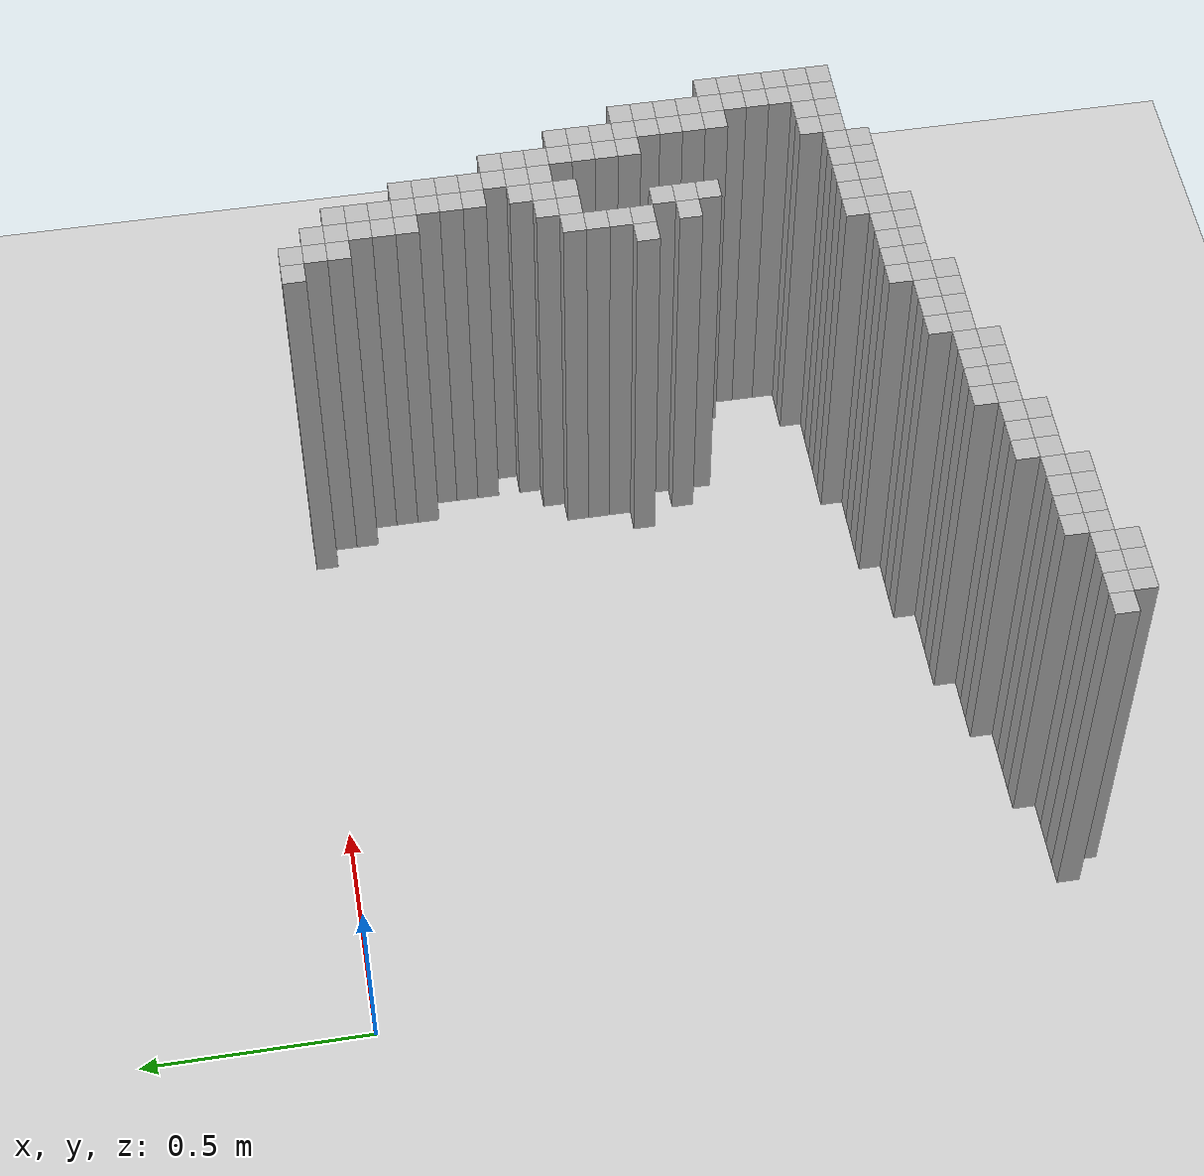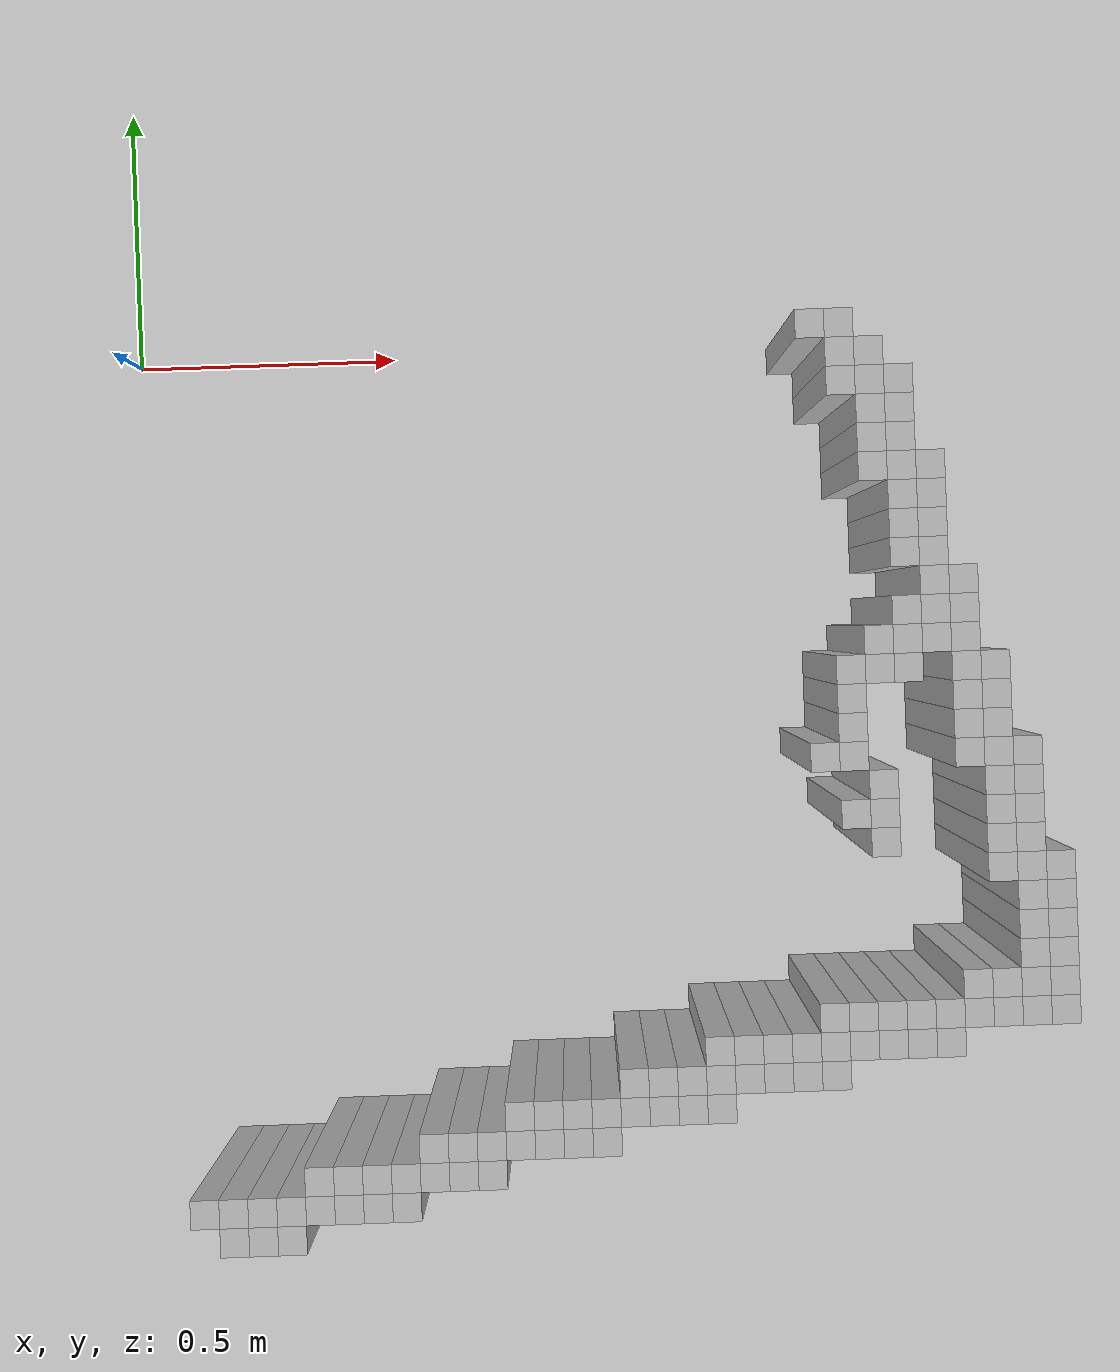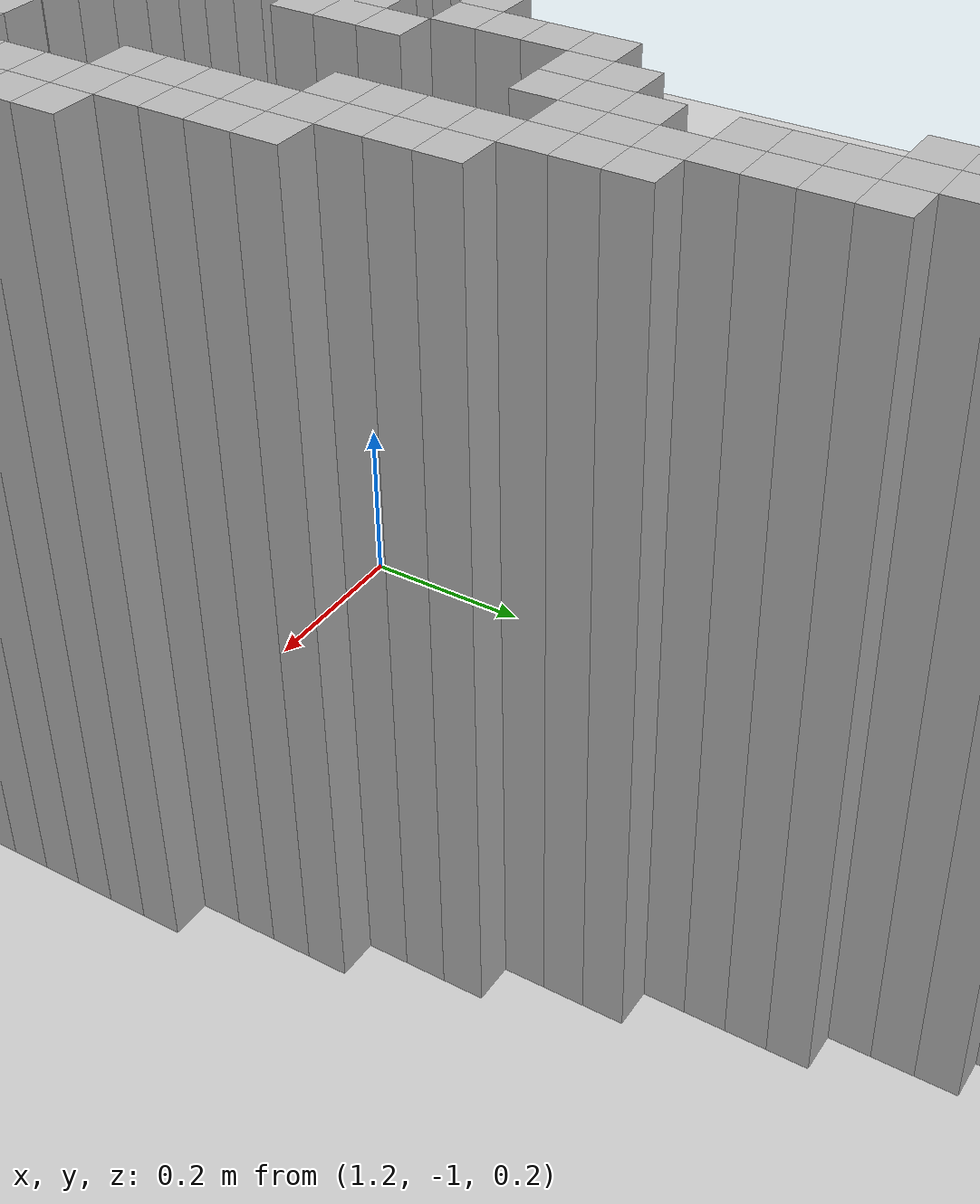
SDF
<sdf version="1.6">
 <world name="default">
  <include><uri>model://ground_plane</uri></include>
  <include><uri>model://sun</uri></include>
  <model name="wall_387">
   <static>true</static>
   <pose>1.2600000000000007 -0.03000000000000025 0.5 0 0 0</pose>
   <link name="link">
    <collision name="collision"><geometry><box><size>0.05 0.05 1</size></box></geometry></collision>
    <visual name="visual"><geometry><box><size>0.05 0.05 1</size></box></geometry></visual>
   </link>
  </model>
  <model name="wall_388">
   <static>true</static>
   <pose>1.3100000000000005 -0.03000000000000025 0.5 0 0 0</pose>
   <link name="link">
    <collision name="collision"><geometry><box><size>0.05 0.05 1</size></box></geometry></collision>
    <visual name="visual"><geometry><box><size>0.05 0.05 1</size></box></geometry></visual>
   </link>
  </model>
  <model name="wall_398">
   <static>true</static>
   <pose>1.3100000000000005 -0.08000000000000007 0.5 0 0 0</pose>
   <link name="link">
    <collision name="collision"><geometry><box><size>0.05 0.05 1</size></box></geometry></collision>
    <visual name="visual"><geometry><box><size>0.05 0.05 1</size></box></geometry></visual>
   </link>
  </model>
  <model name="wall_399">
   <static>true</static>
   <pose>1.3600000000000003 -0.08000000000000007 0.5 0 0 0</pose>
   <link name="link">
    <collision name="collision"><geometry><box><size>0.05 0.05 1</size></box></geometry></collision>
    <visual name="visual"><geometry><box><size>0.05 0.05 1</size></box></geometry></visual>
   </link>
  </model>
  <model name="wall_412">
   <static>true</static>
   <pose>1.3100000000000005 -0.1299999999999999 0.5 0 0 0</pose>
   <link name="link">
    <collision name="collision"><geometry><box><size>0.05 0.05 1</size></box></geometry></collision>
    <visual name="visual"><geometry><box><size>0.05 0.05 1</size></box></geometry></visual>
   </link>
  </model>
  <model name="wall_413">
   <static>true</static>
   <pose>1.3600000000000003 -0.1299999999999999 0.5 0 0 0</pose>
   <link name="link">
    <collision name="collision"><geometry><box><size>0.05 0.05 1</size></box></geometry></collision>
    <visual name="visual"><geometry><box><size>0.05 0.05 1</size></box></geometry></visual>
   </link>
  </model>
  <model name="wall_414">
   <static>true</static>
   <pose>1.4100000000000001 -0.1299999999999999 0.5 0 0 0</pose>
   <link name="link">
    <collision name="collision"><geometry><box><size>0.05 0.05 1</size></box></geometry></collision>
    <visual name="visual"><geometry><box><size>0.05 0.05 1</size></box></geometry></visual>
   </link>
  </model>
  <model name="wall_423">
   <static>true</static>
   <pose>1.3600000000000003 -0.18000000000000016 0.5 0 0 0</pose>
   <link name="link">
    <collision name="collision"><geometry><box><size>0.05 0.05 1</size></box></geometry></collision>
    <visual name="visual"><geometry><box><size>0.05 0.05 1</size></box></geometry></visual>
   </link>
  </model>
  <model name="wall_424">
   <static>true</static>
   <pose>1.4100000000000001 -0.18000000000000016 0.5 0 0 0</pose>
   <link name="link">
    <collision name="collision"><geometry><box><size>0.05 0.05 1</size></box></geometry></collision>
    <visual name="visual"><geometry><box><size>0.05 0.05 1</size></box></geometry></visual>
   </link>
  </model>
  <model name="wall_431">
   <static>true</static>
   <pose>1.3600000000000003 -0.22999999999999998 0.5 0 0 0</pose>
   <link name="link">
    <collision name="collision"><geometry><box><size>0.05 0.05 1</size></box></geometry></collision>
    <visual name="visual"><geometry><box><size>0.05 0.05 1</size></box></geometry></visual>
   </link>
  </model>
  <model name="wall_432">
   <static>true</static>
   <pose>1.4100000000000001 -0.22999999999999998 0.5 0 0 0</pose>
   <link name="link">
    <collision name="collision"><geometry><box><size>0.05 0.05 1</size></box></geometry></collision>
    <visual name="visual"><geometry><box><size>0.05 0.05 1</size></box></geometry></visual>
   </link>
  </model>
  <model name="wall_435">
   <static>true</static>
   <pose>1.3600000000000003 -0.28 0.5 0 0 0</pose>
   <link name="link">
    <collision name="collision"><geometry><box><size>0.05 0.05 1</size></box></geometry></collision>
    <visual name="visual"><geometry><box><size>0.05 0.05 1</size></box></geometry></visual>
   </link>
  </model>
  <model name="wall_436">
   <static>true</static>
   <pose>1.4100000000000001 -0.28 0.5 0 0 0</pose>
   <link name="link">
    <collision name="collision"><geometry><box><size>0.05 0.05 1</size></box></geometry></collision>
    <visual name="visual"><geometry><box><size>0.05 0.05 1</size></box></geometry></visual>
   </link>
  </model>
  <model name="wall_437">
   <static>true</static>
   <pose>1.46 -0.28 0.5 0 0 0</pose>
   <link name="link">
    <collision name="collision"><geometry><box><size>0.05 0.05 1</size></box></geometry></collision>
    <visual name="visual"><geometry><box><size>0.05 0.05 1</size></box></geometry></visual>
   </link>
  </model>
  <model name="wall_444">
   <static>true</static>
   <pose>1.4100000000000001 -0.33000000000000007 0.5 0 0 0</pose>
   <link name="link">
    <collision name="collision"><geometry><box><size>0.05 0.05 1</size></box></geometry></collision>
    <visual name="visual"><geometry><box><size>0.05 0.05 1</size></box></geometry></visual>
   </link>
  </model>
  <model name="wall_445">
   <static>true</static>
   <pose>1.46 -0.33000000000000007 0.5 0 0 0</pose>
   <link name="link">
    <collision name="collision"><geometry><box><size>0.05 0.05 1</size></box></geometry></collision>
    <visual name="visual"><geometry><box><size>0.05 0.05 1</size></box></geometry></visual>
   </link>
  </model>
  <model name="wall_453">
   <static>true</static>
   <pose>1.4100000000000001 -0.3800000000000001 0.5 0 0 0</pose>
   <link name="link">
    <collision name="collision"><geometry><box><size>0.05 0.05 1</size></box></geometry></collision>
    <visual name="visual"><geometry><box><size>0.05 0.05 1</size></box></geometry></visual>
   </link>
  </model>
  <model name="wall_454">
   <static>true</static>
   <pose>1.46 -0.3800000000000001 0.5 0 0 0</pose>
   <link name="link">
    <collision name="collision"><geometry><box><size>0.05 0.05 1</size></box></geometry></collision>
    <visual name="visual"><geometry><box><size>0.05 0.05 1</size></box></geometry></visual>
   </link>
  </model>
  <model name="wall_457">
   <static>true</static>
   <pose>1.4100000000000001 -0.43000000000000016 0.5 0 0 0</pose>
   <link name="link">
    <collision name="collision"><geometry><box><size>0.05 0.05 1</size></box></geometry></collision>
    <visual name="visual"><geometry><box><size>0.05 0.05 1</size></box></geometry></visual>
   </link>
  </model>
  <model name="wall_458">
   <static>true</static>
   <pose>1.46 -0.43000000000000016 0.5 0 0 0</pose>
   <link name="link">
    <collision name="collision"><geometry><box><size>0.05 0.05 1</size></box></geometry></collision>
    <visual name="visual"><geometry><box><size>0.05 0.05 1</size></box></geometry></visual>
   </link>
  </model>
  <model name="wall_459">
   <static>true</static>
   <pose>1.46 -0.48 0.5 0 0 0</pose>
   <link name="link">
    <collision name="collision"><geometry><box><size>0.05 0.05 1</size></box></geometry></collision>
    <visual name="visual"><geometry><box><size>0.05 0.05 1</size></box></geometry></visual>
   </link>
  </model>
  <model name="wall_460">
   <static>true</static>
   <pose>1.5100000000000007 -0.48 0.5 0 0 0</pose>
   <link name="link">
    <collision name="collision"><geometry><box><size>0.05 0.05 1</size></box></geometry></collision>
    <visual name="visual"><geometry><box><size>0.05 0.05 1</size></box></geometry></visual>
   </link>
  </model>
  <model name="wall_462">
   <static>true</static>
   <pose>1.4100000000000001 -0.53 0.5 0 0 0</pose>
   <link name="link">
    <collision name="collision"><geometry><box><size>0.05 0.05 1</size></box></geometry></collision>
    <visual name="visual"><geometry><box><size>0.05 0.05 1</size></box></geometry></visual>
   </link>
  </model>
  <model name="wall_463">
   <static>true</static>
   <pose>1.46 -0.53 0.5 0 0 0</pose>
   <link name="link">
    <collision name="collision"><geometry><box><size>0.05 0.05 1</size></box></geometry></collision>
    <visual name="visual"><geometry><box><size>0.05 0.05 1</size></box></geometry></visual>
   </link>
  </model>
  <model name="wall_464">
   <static>true</static>
   <pose>1.5100000000000007 -0.53 0.5 0 0 0</pose>
   <link name="link">
    <collision name="collision"><geometry><box><size>0.05 0.05 1</size></box></geometry></collision>
    <visual name="visual"><geometry><box><size>0.05 0.05 1</size></box></geometry></visual>
   </link>
  </model>
  <model name="wall_466">
   <static>true</static>
   <pose>1.3600000000000003 -0.5800000000000001 0.5 0 0 0</pose>
   <link name="link">
    <collision name="collision"><geometry><box><size>0.05 0.05 1</size></box></geometry></collision>
    <visual name="visual"><geometry><box><size>0.05 0.05 1</size></box></geometry></visual>
   </link>
  </model>
  <model name="wall_467">
   <static>true</static>
   <pose>1.4100000000000001 -0.5800000000000001 0.5 0 0 0</pose>
   <link name="link">
    <collision name="collision"><geometry><box><size>0.05 0.05 1</size></box></geometry></collision>
    <visual name="visual"><geometry><box><size>0.05 0.05 1</size></box></geometry></visual>
   </link>
  </model>
  <model name="wall_468">
   <static>true</static>
   <pose>1.46 -0.5800000000000001 0.5 0 0 0</pose>
   <link name="link">
    <collision name="collision"><geometry><box><size>0.05 0.05 1</size></box></geometry></collision>
    <visual name="visual"><geometry><box><size>0.05 0.05 1</size></box></geometry></visual>
   </link>
  </model>
  <model name="wall_469">
   <static>true</static>
   <pose>1.5100000000000007 -0.5800000000000001 0.5 0 0 0</pose>
   <link name="link">
    <collision name="collision"><geometry><box><size>0.05 0.05 1</size></box></geometry></collision>
    <visual name="visual"><geometry><box><size>0.05 0.05 1</size></box></geometry></visual>
   </link>
  </model>
  <model name="wall_472">
   <static>true</static>
   <pose>1.3100000000000005 -0.6300000000000001 0.5 0 0 0</pose>
   <link name="link">
    <collision name="collision"><geometry><box><size>0.05 0.05 1</size></box></geometry></collision>
    <visual name="visual"><geometry><box><size>0.05 0.05 1</size></box></geometry></visual>
   </link>
  </model>
  <model name="wall_473">
   <static>true</static>
   <pose>1.3600000000000003 -0.6300000000000001 0.5 0 0 0</pose>
   <link name="link">
    <collision name="collision"><geometry><box><size>0.05 0.05 1</size></box></geometry></collision>
    <visual name="visual"><geometry><box><size>0.05 0.05 1</size></box></geometry></visual>
   </link>
  </model>
  <model name="wall_474">
   <static>true</static>
   <pose>1.4100000000000001 -0.6300000000000001 0.5 0 0 0</pose>
   <link name="link">
    <collision name="collision"><geometry><box><size>0.05 0.05 1</size></box></geometry></collision>
    <visual name="visual"><geometry><box><size>0.05 0.05 1</size></box></geometry></visual>
   </link>
  </model>
  <model name="wall_475">
   <static>true</static>
   <pose>1.5100000000000007 -0.6300000000000001 0.5 0 0 0</pose>
   <link name="link">
    <collision name="collision"><geometry><box><size>0.05 0.05 1</size></box></geometry></collision>
    <visual name="visual"><geometry><box><size>0.05 0.05 1</size></box></geometry></visual>
   </link>
  </model>
  <model name="wall_476">
   <static>true</static>
   <pose>1.5600000000000005 -0.6300000000000001 0.5 0 0 0</pose>
   <link name="link">
    <collision name="collision"><geometry><box><size>0.05 0.05 1</size></box></geometry></collision>
    <visual name="visual"><geometry><box><size>0.05 0.05 1</size></box></geometry></visual>
   </link>
  </model>
  <model name="wall_477">
   <static>true</static>
   <pose>1.3100000000000005 -0.6800000000000002 0.5 0 0 0</pose>
   <link name="link">
    <collision name="collision"><geometry><box><size>0.05 0.05 1</size></box></geometry></collision>
    <visual name="visual"><geometry><box><size>0.05 0.05 1</size></box></geometry></visual>
   </link>
  </model>
  <model name="wall_478">
   <static>true</static>
   <pose>1.5100000000000007 -0.6800000000000002 0.5 0 0 0</pose>
   <link name="link">
    <collision name="collision"><geometry><box><size>0.05 0.05 1</size></box></geometry></collision>
    <visual name="visual"><geometry><box><size>0.05 0.05 1</size></box></geometry></visual>
   </link>
  </model>
  <model name="wall_479">
   <static>true</static>
   <pose>1.5600000000000005 -0.6800000000000002 0.5 0 0 0</pose>
   <link name="link">
    <collision name="collision"><geometry><box><size>0.05 0.05 1</size></box></geometry></collision>
    <visual name="visual"><geometry><box><size>0.05 0.05 1</size></box></geometry></visual>
   </link>
  </model>
  <model name="wall_481">
   <static>true</static>
   <pose>1.3100000000000005 -0.73 0.5 0 0 0</pose>
   <link name="link">
    <collision name="collision"><geometry><box><size>0.05 0.05 1</size></box></geometry></collision>
    <visual name="visual"><geometry><box><size>0.05 0.05 1</size></box></geometry></visual>
   </link>
  </model>
  <model name="wall_482">
   <static>true</static>
   <pose>1.5100000000000007 -0.73 0.5 0 0 0</pose>
   <link name="link">
    <collision name="collision"><geometry><box><size>0.05 0.05 1</size></box></geometry></collision>
    <visual name="visual"><geometry><box><size>0.05 0.05 1</size></box></geometry></visual>
   </link>
  </model>
  <model name="wall_483">
   <static>true</static>
   <pose>1.5600000000000005 -0.73 0.5 0 0 0</pose>
   <link name="link">
    <collision name="collision"><geometry><box><size>0.05 0.05 1</size></box></geometry></collision>
    <visual name="visual"><geometry><box><size>0.05 0.05 1</size></box></geometry></visual>
   </link>
  </model>
  <model name="wall_486">
   <static>true</static>
   <pose>1.2600000000000007 -0.78 0.5 0 0 0</pose>
   <link name="link">
    <collision name="collision"><geometry><box><size>0.05 0.05 1</size></box></geometry></collision>
    <visual name="visual"><geometry><box><size>0.05 0.05 1</size></box></geometry></visual>
   </link>
  </model>
  <model name="wall_487">
   <static>true</static>
   <pose>1.3100000000000005 -0.78 0.5 0 0 0</pose>
   <link name="link">
    <collision name="collision"><geometry><box><size>0.05 0.05 1</size></box></geometry></collision>
    <visual name="visual"><geometry><box><size>0.05 0.05 1</size></box></geometry></visual>
   </link>
  </model>
  <model name="wall_488">
   <static>true</static>
   <pose>1.5100000000000007 -0.78 0.5 0 0 0</pose>
   <link name="link">
    <collision name="collision"><geometry><box><size>0.05 0.05 1</size></box></geometry></collision>
    <visual name="visual"><geometry><box><size>0.05 0.05 1</size></box></geometry></visual>
   </link>
  </model>
  <model name="wall_489">
   <static>true</static>
   <pose>1.5600000000000005 -0.78 0.5 0 0 0</pose>
   <link name="link">
    <collision name="collision"><geometry><box><size>0.05 0.05 1</size></box></geometry></collision>
    <visual name="visual"><geometry><box><size>0.05 0.05 1</size></box></geometry></visual>
   </link>
  </model>
  <model name="wall_490">
   <static>true</static>
   <pose>1.6100000000000003 -0.78 0.5 0 0 0</pose>
   <link name="link">
    <collision name="collision"><geometry><box><size>0.05 0.05 1</size></box></geometry></collision>
    <visual name="visual"><geometry><box><size>0.05 0.05 1</size></box></geometry></visual>
   </link>
  </model>
  <model name="wall_493">
   <static>true</static>
   <pose>1.3600000000000003 -0.8300000000000001 0.5 0 0 0</pose>
   <link name="link">
    <collision name="collision"><geometry><box><size>0.05 0.05 1</size></box></geometry></collision>
    <visual name="visual"><geometry><box><size>0.05 0.05 1</size></box></geometry></visual>
   </link>
  </model>
  <model name="wall_494">
   <static>true</static>
   <pose>1.5600000000000005 -0.8300000000000001 0.5 0 0 0</pose>
   <link name="link">
    <collision name="collision"><geometry><box><size>0.05 0.05 1</size></box></geometry></collision>
    <visual name="visual"><geometry><box><size>0.05 0.05 1</size></box></geometry></visual>
   </link>
  </model>
  <model name="wall_495">
   <static>true</static>
   <pose>1.6100000000000003 -0.8300000000000001 0.5 0 0 0</pose>
   <link name="link">
    <collision name="collision"><geometry><box><size>0.05 0.05 1</size></box></geometry></collision>
    <visual name="visual"><geometry><box><size>0.05 0.05 1</size></box></geometry></visual>
   </link>
  </model>
  <model name="wall_498">
   <static>true</static>
   <pose>1.3100000000000005 -0.8800000000000001 0.5 0 0 0</pose>
   <link name="link">
    <collision name="collision"><geometry><box><size>0.05 0.05 1</size></box></geometry></collision>
    <visual name="visual"><geometry><box><size>0.05 0.05 1</size></box></geometry></visual>
   </link>
  </model>
  <model name="wall_499">
   <static>true</static>
   <pose>1.3600000000000003 -0.8800000000000001 0.5 0 0 0</pose>
   <link name="link">
    <collision name="collision"><geometry><box><size>0.05 0.05 1</size></box></geometry></collision>
    <visual name="visual"><geometry><box><size>0.05 0.05 1</size></box></geometry></visual>
   </link>
  </model>
  <model name="wall_500">
   <static>true</static>
   <pose>1.5600000000000005 -0.8800000000000001 0.5 0 0 0</pose>
   <link name="link">
    <collision name="collision"><geometry><box><size>0.05 0.05 1</size></box></geometry></collision>
    <visual name="visual"><geometry><box><size>0.05 0.05 1</size></box></geometry></visual>
   </link>
  </model>
  <model name="wall_501">
   <static>true</static>
   <pose>1.6100000000000003 -0.8800000000000001 0.5 0 0 0</pose>
   <link name="link">
    <collision name="collision"><geometry><box><size>0.05 0.05 1</size></box></geometry></collision>
    <visual name="visual"><geometry><box><size>0.05 0.05 1</size></box></geometry></visual>
   </link>
  </model>
  <model name="wall_505">
   <static>true</static>
   <pose>1.3600000000000003 -0.9300000000000002 0.5 0 0 0</pose>
   <link name="link">
    <collision name="collision"><geometry><box><size>0.05 0.05 1</size></box></geometry></collision>
    <visual name="visual"><geometry><box><size>0.05 0.05 1</size></box></geometry></visual>
   </link>
  </model>
  <model name="wall_506">
   <static>true</static>
   <pose>1.5600000000000005 -0.9300000000000002 0.5 0 0 0</pose>
   <link name="link">
    <collision name="collision"><geometry><box><size>0.05 0.05 1</size></box></geometry></collision>
    <visual name="visual"><geometry><box><size>0.05 0.05 1</size></box></geometry></visual>
   </link>
  </model>
  <model name="wall_507">
   <static>true</static>
   <pose>1.6100000000000003 -0.9300000000000002 0.5 0 0 0</pose>
   <link name="link">
    <collision name="collision"><geometry><box><size>0.05 0.05 1</size></box></geometry></collision>
    <visual name="visual"><geometry><box><size>0.05 0.05 1</size></box></geometry></visual>
   </link>
  </model>
  <model name="wall_511">
   <static>true</static>
   <pose>1.5600000000000005 -0.98 0.5 0 0 0</pose>
   <link name="link">
    <collision name="collision"><geometry><box><size>0.05 0.05 1</size></box></geometry></collision>
    <visual name="visual"><geometry><box><size>0.05 0.05 1</size></box></geometry></visual>
   </link>
  </model>
  <model name="wall_512">
   <static>true</static>
   <pose>1.6100000000000003 -0.98 0.5 0 0 0</pose>
   <link name="link">
    <collision name="collision"><geometry><box><size>0.05 0.05 1</size></box></geometry></collision>
    <visual name="visual"><geometry><box><size>0.05 0.05 1</size></box></geometry></visual>
   </link>
  </model>
  <model name="wall_513">
   <static>true</static>
   <pose>1.6600000000000001 -0.98 0.5 0 0 0</pose>
   <link name="link">
    <collision name="collision"><geometry><box><size>0.05 0.05 1</size></box></geometry></collision>
    <visual name="visual"><geometry><box><size>0.05 0.05 1</size></box></geometry></visual>
   </link>
  </model>
  <model name="wall_516">
   <static>true</static>
   <pose>1.6100000000000003 -1.03 0.5 0 0 0</pose>
   <link name="link">
    <collision name="collision"><geometry><box><size>0.05 0.05 1</size></box></geometry></collision>
    <visual name="visual"><geometry><box><size>0.05 0.05 1</size></box></geometry></visual>
   </link>
  </model>
  <model name="wall_517">
   <static>true</static>
   <pose>1.6600000000000001 -1.03 0.5 0 0 0</pose>
   <link name="link">
    <collision name="collision"><geometry><box><size>0.05 0.05 1</size></box></geometry></collision>
    <visual name="visual"><geometry><box><size>0.05 0.05 1</size></box></geometry></visual>
   </link>
  </model>
  <model name="wall_520">
   <static>true</static>
   <pose>1.6100000000000003 -1.08 0.5 0 0 0</pose>
   <link name="link">
    <collision name="collision"><geometry><box><size>0.05 0.05 1</size></box></geometry></collision>
    <visual name="visual"><geometry><box><size>0.05 0.05 1</size></box></geometry></visual>
   </link>
  </model>
  <model name="wall_521">
   <static>true</static>
   <pose>1.6600000000000001 -1.08 0.5 0 0 0</pose>
   <link name="link">
    <collision name="collision"><geometry><box><size>0.05 0.05 1</size></box></geometry></collision>
    <visual name="visual"><geometry><box><size>0.05 0.05 1</size></box></geometry></visual>
   </link>
  </model>
  <model name="wall_524">
   <static>true</static>
   <pose>1.6100000000000003 -1.1300000000000001 0.5 0 0 0</pose>
   <link name="link">
    <collision name="collision"><geometry><box><size>0.05 0.05 1</size></box></geometry></collision>
    <visual name="visual"><geometry><box><size>0.05 0.05 1</size></box></geometry></visual>
   </link>
  </model>
  <model name="wall_525">
   <static>true</static>
   <pose>1.6600000000000001 -1.1300000000000001 0.5 0 0 0</pose>
   <link name="link">
    <collision name="collision"><geometry><box><size>0.05 0.05 1</size></box></geometry></collision>
    <visual name="visual"><geometry><box><size>0.05 0.05 1</size></box></geometry></visual>
   </link>
  </model>
  <model name="wall_529">
   <static>true</static>
   <pose>1.5100000000000007 -1.1800000000000002 0.5 0 0 0</pose>
   <link name="link">
    <collision name="collision"><geometry><box><size>0.05 0.05 1</size></box></geometry></collision>
    <visual name="visual"><geometry><box><size>0.05 0.05 1</size></box></geometry></visual>
   </link>
  </model>
  <model name="wall_530">
   <static>true</static>
   <pose>1.5600000000000005 -1.1800000000000002 0.5 0 0 0</pose>
   <link name="link">
    <collision name="collision"><geometry><box><size>0.05 0.05 1</size></box></geometry></collision>
    <visual name="visual"><geometry><box><size>0.05 0.05 1</size></box></geometry></visual>
   </link>
  </model>
  <model name="wall_531">
   <static>true</static>
   <pose>1.6100000000000003 -1.1800000000000002 0.5 0 0 0</pose>
   <link name="link">
    <collision name="collision"><geometry><box><size>0.05 0.05 1</size></box></geometry></collision>
    <visual name="visual"><geometry><box><size>0.05 0.05 1</size></box></geometry></visual>
   </link>
  </model>
  <model name="wall_532">
   <static>true</static>
   <pose>1.6600000000000001 -1.1800000000000002 0.5 0 0 0</pose>
   <link name="link">
    <collision name="collision"><geometry><box><size>0.05 0.05 1</size></box></geometry></collision>
    <visual name="visual"><geometry><box><size>0.05 0.05 1</size></box></geometry></visual>
   </link>
  </model>
  <model name="wall_538">
   <static>true</static>
   <pose>1.2600000000000007 -1.23 0.5 0 0 0</pose>
   <link name="link">
    <collision name="collision"><geometry><box><size>0.05 0.05 1</size></box></geometry></collision>
    <visual name="visual"><geometry><box><size>0.05 0.05 1</size></box></geometry></visual>
   </link>
  </model>
  <model name="wall_539">
   <static>true</static>
   <pose>1.3100000000000005 -1.23 0.5 0 0 0</pose>
   <link name="link">
    <collision name="collision"><geometry><box><size>0.05 0.05 1</size></box></geometry></collision>
    <visual name="visual"><geometry><box><size>0.05 0.05 1</size></box></geometry></visual>
   </link>
  </model>
  <model name="wall_540">
   <static>true</static>
   <pose>1.3600000000000003 -1.23 0.5 0 0 0</pose>
   <link name="link">
    <collision name="collision"><geometry><box><size>0.05 0.05 1</size></box></geometry></collision>
    <visual name="visual"><geometry><box><size>0.05 0.05 1</size></box></geometry></visual>
   </link>
  </model>
  <model name="wall_541">
   <static>true</static>
   <pose>1.4100000000000001 -1.23 0.5 0 0 0</pose>
   <link name="link">
    <collision name="collision"><geometry><box><size>0.05 0.05 1</size></box></geometry></collision>
    <visual name="visual"><geometry><box><size>0.05 0.05 1</size></box></geometry></visual>
   </link>
  </model>
  <model name="wall_542">
   <static>true</static>
   <pose>1.46 -1.23 0.5 0 0 0</pose>
   <link name="link">
    <collision name="collision"><geometry><box><size>0.05 0.05 1</size></box></geometry></collision>
    <visual name="visual"><geometry><box><size>0.05 0.05 1</size></box></geometry></visual>
   </link>
  </model>
  <model name="wall_543">
   <static>true</static>
   <pose>1.5100000000000007 -1.23 0.5 0 0 0</pose>
   <link name="link">
    <collision name="collision"><geometry><box><size>0.05 0.05 1</size></box></geometry></collision>
    <visual name="visual"><geometry><box><size>0.05 0.05 1</size></box></geometry></visual>
   </link>
  </model>
  <model name="wall_544">
   <static>true</static>
   <pose>1.5600000000000005 -1.23 0.5 0 0 0</pose>
   <link name="link">
    <collision name="collision"><geometry><box><size>0.05 0.05 1</size></box></geometry></collision>
    <visual name="visual"><geometry><box><size>0.05 0.05 1</size></box></geometry></visual>
   </link>
  </model>
  <model name="wall_545">
   <static>true</static>
   <pose>1.6100000000000003 -1.23 0.5 0 0 0</pose>
   <link name="link">
    <collision name="collision"><geometry><box><size>0.05 0.05 1</size></box></geometry></collision>
    <visual name="visual"><geometry><box><size>0.05 0.05 1</size></box></geometry></visual>
   </link>
  </model>
  <model name="wall_546">
   <static>true</static>
   <pose>1.6600000000000001 -1.23 0.5 0 0 0</pose>
   <link name="link">
    <collision name="collision"><geometry><box><size>0.05 0.05 1</size></box></geometry></collision>
    <visual name="visual"><geometry><box><size>0.05 0.05 1</size></box></geometry></visual>
   </link>
  </model>
  <model name="wall_552">
   <static>true</static>
   <pose>1.0600000000000005 -1.2800000000000002 0.5 0 0 0</pose>
   <link name="link">
    <collision name="collision"><geometry><box><size>0.05 0.05 1</size></box></geometry></collision>
    <visual name="visual"><geometry><box><size>0.05 0.05 1</size></box></geometry></visual>
   </link>
  </model>
  <model name="wall_553">
   <static>true</static>
   <pose>1.1100000000000003 -1.2800000000000002 0.5 0 0 0</pose>
   <link name="link">
    <collision name="collision"><geometry><box><size>0.05 0.05 1</size></box></geometry></collision>
    <visual name="visual"><geometry><box><size>0.05 0.05 1</size></box></geometry></visual>
   </link>
  </model>
  <model name="wall_554">
   <static>true</static>
   <pose>1.1600000000000001 -1.2800000000000002 0.5 0 0 0</pose>
   <link name="link">
    <collision name="collision"><geometry><box><size>0.05 0.05 1</size></box></geometry></collision>
    <visual name="visual"><geometry><box><size>0.05 0.05 1</size></box></geometry></visual>
   </link>
  </model>
  <model name="wall_555">
   <static>true</static>
   <pose>1.21 -1.2800000000000002 0.5 0 0 0</pose>
   <link name="link">
    <collision name="collision"><geometry><box><size>0.05 0.05 1</size></box></geometry></collision>
    <visual name="visual"><geometry><box><size>0.05 0.05 1</size></box></geometry></visual>
   </link>
  </model>
  <model name="wall_556">
   <static>true</static>
   <pose>1.2600000000000007 -1.2800000000000002 0.5 0 0 0</pose>
   <link name="link">
    <collision name="collision"><geometry><box><size>0.05 0.05 1</size></box></geometry></collision>
    <visual name="visual"><geometry><box><size>0.05 0.05 1</size></box></geometry></visual>
   </link>
  </model>
  <model name="wall_557">
   <static>true</static>
   <pose>1.3100000000000005 -1.2800000000000002 0.5 0 0 0</pose>
   <link name="link">
    <collision name="collision"><geometry><box><size>0.05 0.05 1</size></box></geometry></collision>
    <visual name="visual"><geometry><box><size>0.05 0.05 1</size></box></geometry></visual>
   </link>
  </model>
  <model name="wall_558">
   <static>true</static>
   <pose>1.3600000000000003 -1.2800000000000002 0.5 0 0 0</pose>
   <link name="link">
    <collision name="collision"><geometry><box><size>0.05 0.05 1</size></box></geometry></collision>
    <visual name="visual"><geometry><box><size>0.05 0.05 1</size></box></geometry></visual>
   </link>
  </model>
  <model name="wall_559">
   <static>true</static>
   <pose>1.4100000000000001 -1.2800000000000002 0.5 0 0 0</pose>
   <link name="link">
    <collision name="collision"><geometry><box><size>0.05 0.05 1</size></box></geometry></collision>
    <visual name="visual"><geometry><box><size>0.05 0.05 1</size></box></geometry></visual>
   </link>
  </model>
  <model name="wall_560">
   <static>true</static>
   <pose>1.46 -1.2800000000000002 0.5 0 0 0</pose>
   <link name="link">
    <collision name="collision"><geometry><box><size>0.05 0.05 1</size></box></geometry></collision>
    <visual name="visual"><geometry><box><size>0.05 0.05 1</size></box></geometry></visual>
   </link>
  </model>
  <model name="wall_566">
   <static>true</static>
   <pose>0.9100000000000001 -1.33 0.5 0 0 0</pose>
   <link name="link">
    <collision name="collision"><geometry><box><size>0.05 0.05 1</size></box></geometry></collision>
    <visual name="visual"><geometry><box><size>0.05 0.05 1</size></box></geometry></visual>
   </link>
  </model>
  <model name="wall_567">
   <static>true</static>
   <pose>0.9600000000000004 -1.33 0.5 0 0 0</pose>
   <link name="link">
    <collision name="collision"><geometry><box><size>0.05 0.05 1</size></box></geometry></collision>
    <visual name="visual"><geometry><box><size>0.05 0.05 1</size></box></geometry></visual>
   </link>
  </model>
  <model name="wall_568">
   <static>true</static>
   <pose>1.0100000000000002 -1.33 0.5 0 0 0</pose>
   <link name="link">
    <collision name="collision"><geometry><box><size>0.05 0.05 1</size></box></geometry></collision>
    <visual name="visual"><geometry><box><size>0.05 0.05 1</size></box></geometry></visual>
   </link>
  </model>
  <model name="wall_569">
   <static>true</static>
   <pose>1.0600000000000005 -1.33 0.5 0 0 0</pose>
   <link name="link">
    <collision name="collision"><geometry><box><size>0.05 0.05 1</size></box></geometry></collision>
    <visual name="visual"><geometry><box><size>0.05 0.05 1</size></box></geometry></visual>
   </link>
  </model>
  <model name="wall_570">
   <static>true</static>
   <pose>1.1100000000000003 -1.33 0.5 0 0 0</pose>
   <link name="link">
    <collision name="collision"><geometry><box><size>0.05 0.05 1</size></box></geometry></collision>
    <visual name="visual"><geometry><box><size>0.05 0.05 1</size></box></geometry></visual>
   </link>
  </model>
  <model name="wall_571">
   <static>true</static>
   <pose>1.1600000000000001 -1.33 0.5 0 0 0</pose>
   <link name="link">
    <collision name="collision"><geometry><box><size>0.05 0.05 1</size></box></geometry></collision>
    <visual name="visual"><geometry><box><size>0.05 0.05 1</size></box></geometry></visual>
   </link>
  </model>
  <model name="wall_572">
   <static>true</static>
   <pose>1.21 -1.33 0.5 0 0 0</pose>
   <link name="link">
    <collision name="collision"><geometry><box><size>0.05 0.05 1</size></box></geometry></collision>
    <visual name="visual"><geometry><box><size>0.05 0.05 1</size></box></geometry></visual>
   </link>
  </model>
  <model name="wall_573">
   <static>true</static>
   <pose>1.2600000000000007 -1.33 0.5 0 0 0</pose>
   <link name="link">
    <collision name="collision"><geometry><box><size>0.05 0.05 1</size></box></geometry></collision>
    <visual name="visual"><geometry><box><size>0.05 0.05 1</size></box></geometry></visual>
   </link>
  </model>
  <model name="wall_576">
   <static>true</static>
   <pose>0.7100000000000004 -1.3800000000000001 0.5 0 0 0</pose>
   <link name="link">
    <collision name="collision"><geometry><box><size>0.05 0.05 1</size></box></geometry></collision>
    <visual name="visual"><geometry><box><size>0.05 0.05 1</size></box></geometry></visual>
   </link>
  </model>
  <model name="wall_577">
   <static>true</static>
   <pose>0.7600000000000002 -1.3800000000000001 0.5 0 0 0</pose>
   <link name="link">
    <collision name="collision"><geometry><box><size>0.05 0.05 1</size></box></geometry></collision>
    <visual name="visual"><geometry><box><size>0.05 0.05 1</size></box></geometry></visual>
   </link>
  </model>
  <model name="wall_578">
   <static>true</static>
   <pose>0.8100000000000005 -1.3800000000000001 0.5 0 0 0</pose>
   <link name="link">
    <collision name="collision"><geometry><box><size>0.05 0.05 1</size></box></geometry></collision>
    <visual name="visual"><geometry><box><size>0.05 0.05 1</size></box></geometry></visual>
   </link>
  </model>
  <model name="wall_579">
   <static>true</static>
   <pose>0.8600000000000003 -1.3800000000000001 0.5 0 0 0</pose>
   <link name="link">
    <collision name="collision"><geometry><box><size>0.05 0.05 1</size></box></geometry></collision>
    <visual name="visual"><geometry><box><size>0.05 0.05 1</size></box></geometry></visual>
   </link>
  </model>
  <model name="wall_580">
   <static>true</static>
   <pose>0.9100000000000001 -1.3800000000000001 0.5 0 0 0</pose>
   <link name="link">
    <collision name="collision"><geometry><box><size>0.05 0.05 1</size></box></geometry></collision>
    <visual name="visual"><geometry><box><size>0.05 0.05 1</size></box></geometry></visual>
   </link>
  </model>
  <model name="wall_581">
   <static>true</static>
   <pose>0.9600000000000004 -1.3800000000000001 0.5 0 0 0</pose>
   <link name="link">
    <collision name="collision"><geometry><box><size>0.05 0.05 1</size></box></geometry></collision>
    <visual name="visual"><geometry><box><size>0.05 0.05 1</size></box></geometry></visual>
   </link>
  </model>
  <model name="wall_582">
   <static>true</static>
   <pose>1.0100000000000002 -1.3800000000000001 0.5 0 0 0</pose>
   <link name="link">
    <collision name="collision"><geometry><box><size>0.05 0.05 1</size></box></geometry></collision>
    <visual name="visual"><geometry><box><size>0.05 0.05 1</size></box></geometry></visual>
   </link>
  </model>
  <model name="wall_583">
   <static>true</static>
   <pose>1.0600000000000005 -1.3800000000000001 0.5 0 0 0</pose>
   <link name="link">
    <collision name="collision"><geometry><box><size>0.05 0.05 1</size></box></geometry></collision>
    <visual name="visual"><geometry><box><size>0.05 0.05 1</size></box></geometry></visual>
   </link>
  </model>
  <model name="wall_586">
   <static>true</static>
   <pose>0.5600000000000005 -1.4300000000000002 0.5 0 0 0</pose>
   <link name="link">
    <collision name="collision"><geometry><box><size>0.05 0.05 1</size></box></geometry></collision>
    <visual name="visual"><geometry><box><size>0.05 0.05 1</size></box></geometry></visual>
   </link>
  </model>
  <model name="wall_587">
   <static>true</static>
   <pose>0.6100000000000003 -1.4300000000000002 0.5 0 0 0</pose>
   <link name="link">
    <collision name="collision"><geometry><box><size>0.05 0.05 1</size></box></geometry></collision>
    <visual name="visual"><geometry><box><size>0.05 0.05 1</size></box></geometry></visual>
   </link>
  </model>
  <model name="wall_588">
   <static>true</static>
   <pose>0.6600000000000001 -1.4300000000000002 0.5 0 0 0</pose>
   <link name="link">
    <collision name="collision"><geometry><box><size>0.05 0.05 1</size></box></geometry></collision>
    <visual name="visual"><geometry><box><size>0.05 0.05 1</size></box></geometry></visual>
   </link>
  </model>
  <model name="wall_589">
   <static>true</static>
   <pose>0.7100000000000004 -1.4300000000000002 0.5 0 0 0</pose>
   <link name="link">
    <collision name="collision"><geometry><box><size>0.05 0.05 1</size></box></geometry></collision>
    <visual name="visual"><geometry><box><size>0.05 0.05 1</size></box></geometry></visual>
   </link>
  </model>
  <model name="wall_590">
   <static>true</static>
   <pose>0.7600000000000002 -1.4300000000000002 0.5 0 0 0</pose>
   <link name="link">
    <collision name="collision"><geometry><box><size>0.05 0.05 1</size></box></geometry></collision>
    <visual name="visual"><geometry><box><size>0.05 0.05 1</size></box></geometry></visual>
   </link>
  </model>
  <model name="wall_591">
   <static>true</static>
   <pose>0.8100000000000005 -1.4300000000000002 0.5 0 0 0</pose>
   <link name="link">
    <collision name="collision"><geometry><box><size>0.05 0.05 1</size></box></geometry></collision>
    <visual name="visual"><geometry><box><size>0.05 0.05 1</size></box></geometry></visual>
   </link>
  </model>
  <model name="wall_592">
   <static>true</static>
   <pose>0.8600000000000003 -1.4300000000000002 0.5 0 0 0</pose>
   <link name="link">
    <collision name="collision"><geometry><box><size>0.05 0.05 1</size></box></geometry></collision>
    <visual name="visual"><geometry><box><size>0.05 0.05 1</size></box></geometry></visual>
   </link>
  </model>
  <model name="wall_596">
   <static>true</static>
   <pose>0.3600000000000003 -1.48 0.5 0 0 0</pose>
   <link name="link">
    <collision name="collision"><geometry><box><size>0.05 0.05 1</size></box></geometry></collision>
    <visual name="visual"><geometry><box><size>0.05 0.05 1</size></box></geometry></visual>
   </link>
  </model>
  <model name="wall_597">
   <static>true</static>
   <pose>0.41000000000000014 -1.48 0.5 0 0 0</pose>
   <link name="link">
    <collision name="collision"><geometry><box><size>0.05 0.05 1</size></box></geometry></collision>
    <visual name="visual"><geometry><box><size>0.05 0.05 1</size></box></geometry></visual>
   </link>
  </model>
  <model name="wall_598">
   <static>true</static>
   <pose>0.4600000000000004 -1.48 0.5 0 0 0</pose>
   <link name="link">
    <collision name="collision"><geometry><box><size>0.05 0.05 1</size></box></geometry></collision>
    <visual name="visual"><geometry><box><size>0.05 0.05 1</size></box></geometry></visual>
   </link>
  </model>
  <model name="wall_599">
   <static>true</static>
   <pose>0.5100000000000002 -1.48 0.5 0 0 0</pose>
   <link name="link">
    <collision name="collision"><geometry><box><size>0.05 0.05 1</size></box></geometry></collision>
    <visual name="visual"><geometry><box><size>0.05 0.05 1</size></box></geometry></visual>
   </link>
  </model>
  <model name="wall_600">
   <static>true</static>
   <pose>0.5600000000000005 -1.48 0.5 0 0 0</pose>
   <link name="link">
    <collision name="collision"><geometry><box><size>0.05 0.05 1</size></box></geometry></collision>
    <visual name="visual"><geometry><box><size>0.05 0.05 1</size></box></geometry></visual>
   </link>
  </model>
  <model name="wall_601">
   <static>true</static>
   <pose>0.6100000000000003 -1.48 0.5 0 0 0</pose>
   <link name="link">
    <collision name="collision"><geometry><box><size>0.05 0.05 1</size></box></geometry></collision>
    <visual name="visual"><geometry><box><size>0.05 0.05 1</size></box></geometry></visual>
   </link>
  </model>
  <model name="wall_602">
   <static>true</static>
   <pose>0.6600000000000001 -1.48 0.5 0 0 0</pose>
   <link name="link">
    <collision name="collision"><geometry><box><size>0.05 0.05 1</size></box></geometry></collision>
    <visual name="visual"><geometry><box><size>0.05 0.05 1</size></box></geometry></visual>
   </link>
  </model>
  <model name="wall_609">
   <static>true</static>
   <pose>0.16000000000000014 -1.5300000000000002 0.5 0 0 0</pose>
   <link name="link">
    <collision name="collision"><geometry><box><size>0.05 0.05 1</size></box></geometry></collision>
    <visual name="visual"><geometry><box><size>0.05 0.05 1</size></box></geometry></visual>
   </link>
  </model>
  <model name="wall_610">
   <static>true</static>
   <pose>0.2100000000000004 -1.5300000000000002 0.5 0 0 0</pose>
   <link name="link">
    <collision name="collision"><geometry><box><size>0.05 0.05 1</size></box></geometry></collision>
    <visual name="visual"><geometry><box><size>0.05 0.05 1</size></box></geometry></visual>
   </link>
  </model>
  <model name="wall_611">
   <static>true</static>
   <pose>0.26000000000000023 -1.5300000000000002 0.5 0 0 0</pose>
   <link name="link">
    <collision name="collision"><geometry><box><size>0.05 0.05 1</size></box></geometry></collision>
    <visual name="visual"><geometry><box><size>0.05 0.05 1</size></box></geometry></visual>
   </link>
  </model>
  <model name="wall_612">
   <static>true</static>
   <pose>0.3100000000000005 -1.5300000000000002 0.5 0 0 0</pose>
   <link name="link">
    <collision name="collision"><geometry><box><size>0.05 0.05 1</size></box></geometry></collision>
    <visual name="visual"><geometry><box><size>0.05 0.05 1</size></box></geometry></visual>
   </link>
  </model>
  <model name="wall_613">
   <static>true</static>
   <pose>0.3600000000000003 -1.5300000000000002 0.5 0 0 0</pose>
   <link name="link">
    <collision name="collision"><geometry><box><size>0.05 0.05 1</size></box></geometry></collision>
    <visual name="visual"><geometry><box><size>0.05 0.05 1</size></box></geometry></visual>
   </link>
  </model>
  <model name="wall_614">
   <static>true</static>
   <pose>0.41000000000000014 -1.5300000000000002 0.5 0 0 0</pose>
   <link name="link">
    <collision name="collision"><geometry><box><size>0.05 0.05 1</size></box></geometry></collision>
    <visual name="visual"><geometry><box><size>0.05 0.05 1</size></box></geometry></visual>
   </link>
  </model>
  <model name="wall_615">
   <static>true</static>
   <pose>0.4600000000000004 -1.5300000000000002 0.5 0 0 0</pose>
   <link name="link">
    <collision name="collision"><geometry><box><size>0.05 0.05 1</size></box></geometry></collision>
    <visual name="visual"><geometry><box><size>0.05 0.05 1</size></box></geometry></visual>
   </link>
  </model>
  <model name="wall_616">
   <static>true</static>
   <pose>0.5100000000000002 -1.5300000000000002 0.5 0 0 0</pose>
   <link name="link">
    <collision name="collision"><geometry><box><size>0.05 0.05 1</size></box></geometry></collision>
    <visual name="visual"><geometry><box><size>0.05 0.05 1</size></box></geometry></visual>
   </link>
  </model>
  <model name="wall_631">
   <static>true</static>
   <pose>0.2100000000000004 -1.58 0.5 0 0 0</pose>
   <link name="link">
    <collision name="collision"><geometry><box><size>0.05 0.05 1</size></box></geometry></collision>
    <visual name="visual"><geometry><box><size>0.05 0.05 1</size></box></geometry></visual>
   </link>
  </model>
  <model name="wall_632">
   <static>true</static>
   <pose>0.26000000000000023 -1.58 0.5 0 0 0</pose>
   <link name="link">
    <collision name="collision"><geometry><box><size>0.05 0.05 1</size></box></geometry></collision>
    <visual name="visual"><geometry><box><size>0.05 0.05 1</size></box></geometry></visual>
   </link>
  </model>
  <model name="wall_633">
   <static>true</static>
   <pose>0.3100000000000005 -1.58 0.5 0 0 0</pose>
   <link name="link">
    <collision name="collision"><geometry><box><size>0.05 0.05 1</size></box></geometry></collision>
    <visual name="visual"><geometry><box><size>0.05 0.05 1</size></box></geometry></visual>
   </link>
  </model>
 </world>
</sdf>
